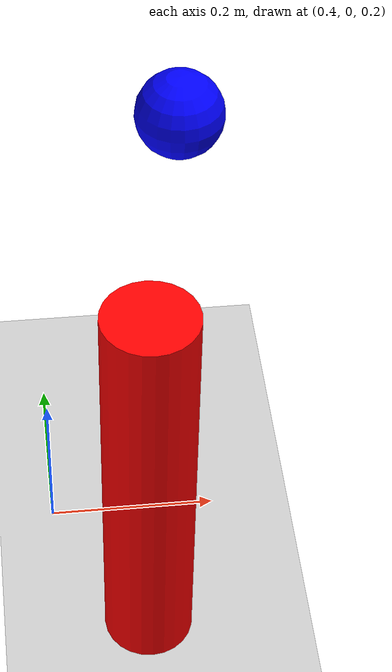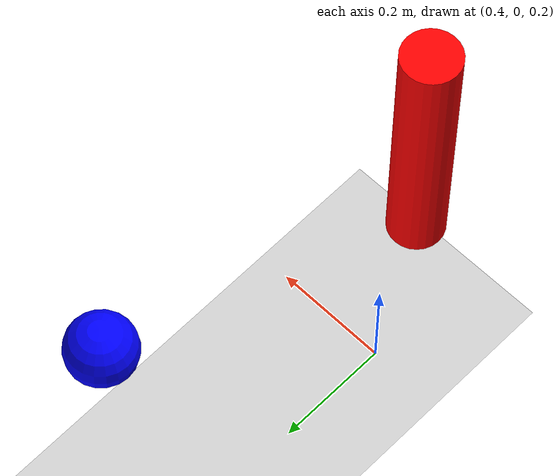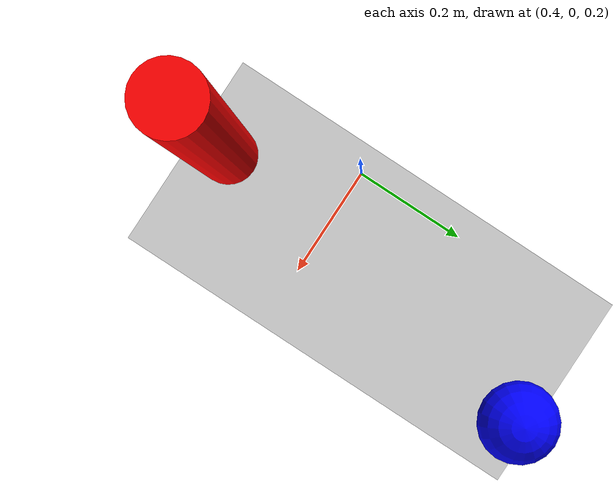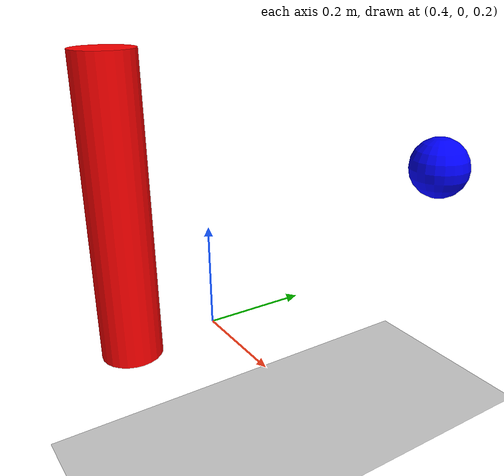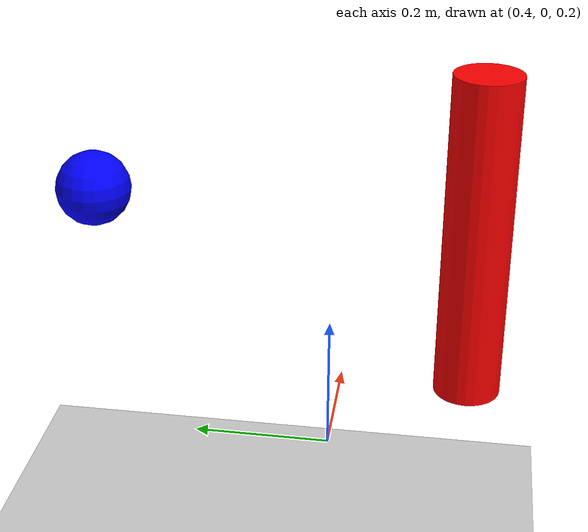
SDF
<?xml version="1.0" ?>
<sdf version="1.9">
  <world name="default">
    <!-- Physics -->
    <physics name="1ms" type="ignored">
      <max_step_size>0.001</max_step_size>
      <real_time_factor>1.0</real_time_factor>
    </physics>

    <!-- REQUIRED FOR ALL SENSORS -->
    <plugin
      filename="gz-sim-sensors-system"
      name="gz::sim::systems::Sensors">
    </plugin>

    <!-- Plugin for the physics engine -->
    <plugin
      filename="gz-sim-physics-system"
      name="gz::sim::systems::Physics">
    </plugin>

    <!-- Plugin for the user commands (interaction) -->
    <plugin
      filename="gz-sim-user-commands-system"
      name="gz::sim::systems::UserCommands">
    </plugin>

    <!-- Plugin for the scene manager -->
    <plugin
      filename="gz-sim-scene-broadcaster-system"
      name="gz::sim::systems::SceneBroadcaster">
    </plugin>

    <!-- Sun -->
    <light type="directional" name="sun">
      <cast_shadows>true</cast_shadows>
      <pose>0 0 10 0 0 0</pose>
      <diffuse>0.8 0.8 0.8 1</diffuse>
      <specular>0.2 0.2 0.2 1</specular>
      <attenuation>
        <range>1000</range>
        <constant>0.9</constant>
        <linear>0.01</linear>
        <quadratic>0.001</quadratic>
      </attenuation>
      <direction>-0.5 0.1 -0.9</direction>
    </light>

    <!-- Ground plane -->
    <model name="ground_plane">
      <static>true</static>
      <link name="link">
        <collision name="collision">
          <geometry>
            <plane>
              <normal>0 0 1</normal>
              <size>100 100</size>
            </plane>
          </geometry>
        </collision>
        <visual name="visual">
          <geometry>
            <plane>
              <normal>0 0 1</normal>
              <size>100 100</size>
            </plane>
          </geometry>
          <material>
            <ambient>0.8 0.8 0.8 1</ambient>
            <diffuse>0.8 0.8 0.8 1</diffuse>
            <specular>0.8 0.8 0.8 1</specular>
          </material>
        </visual>
      </link>
    </model>
    <!-- Cylinder object -->
    <model name="cylinder_object">
      <static>true</static>
      <pose>0.5 -0.2 0.5 0 0 0</pose>
      <link name="link">
        <collision name="collision">
          <geometry>
            <cylinder>
              <radius>0.05</radius>
              <length>0.5</length>
            </cylinder>
          </geometry>
        </collision>
        <visual name="visual">
          <geometry>
            <cylinder>
              <radius>0.05</radius>
              <length>0.5</length>
            </cylinder>
          </geometry>
          <material>
            <ambient>1 0 0 1</ambient>
            <diffuse>1 0 0 1</diffuse>
          </material>
        </visual>
      </link>
    </model>

    <!-- Sphere object -->
    <model name="sphere_object">
      <static>true</static>
      <pose>0.6 0.4 0.5 0 0 0</pose>
      <link name="link">
        <collision name="collision">
          <geometry>
            <sphere><radius>0.06</radius></sphere>
          </geometry>
        </collision>
        <visual name="visual">
          <geometry>
            <sphere><radius>0.06</radius></sphere>
          </geometry>
          <material>
            <ambient>0 0 1 1</ambient>
            <diffuse>0 0 1 1</diffuse>
          </material>
        </visual>
      </link>
    </model>
  </world>
</sdf>
